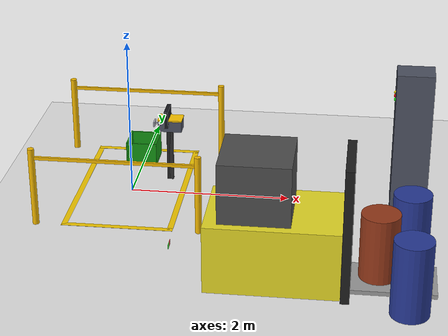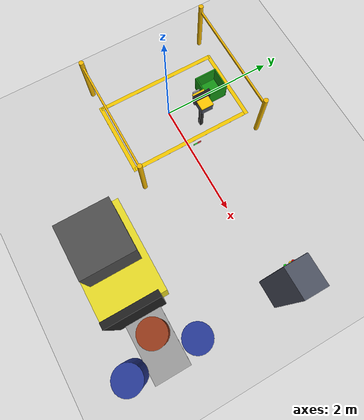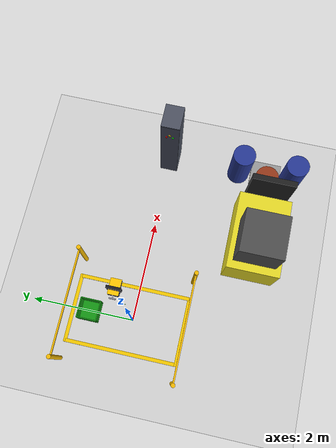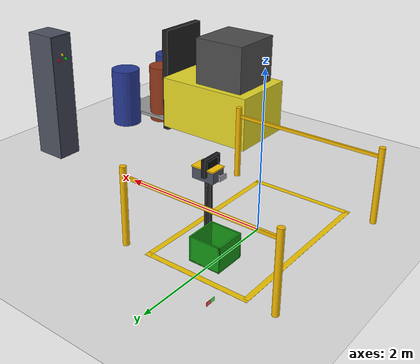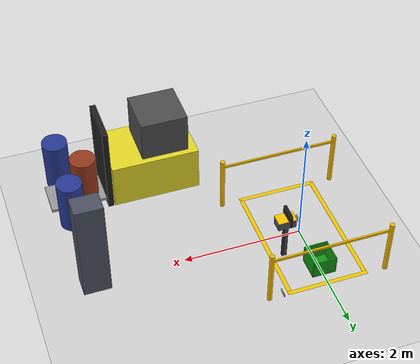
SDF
<sdf version="1.6">
 <world name="weld_inspection_world">
  <include><uri>model://ground_plane</uri></include>
  <model name="camera_model">
   <static>true</static>
   <pose>0 0 0.95 0 1.5708 0</pose>
   <link name="camera_link">
    <sensor name="weld_camera" type="camera">
     <always_on>1</always_on>
     <update_rate>10</update_rate>
     <camera>
      <horizontal_fov>0.80</horizontal_fov>
      <image><width>640</width><height>480</height></image>
      <clip><near>0.01</near><far>3.0</far></clip>
     </camera>
     <plugin name="camera_controller" filename="libgazebo_ros_camera.so">
      <alwaysOn>true</alwaysOn>
      <cameraName>weld_camera</cameraName>
      <frameName>camera_link</frameName>
     </plugin>
    </sensor>
   </link>
  </model>
  <model name="status_stand">
   <static>true</static>
   <link name="pole">
    <pose>0.42 0.40 0.4 0 0 0</pose>
    <visual name="v">
     <geometry><box><size>0.05 0.05 0.8</size></box></geometry>
     <material><ambient>0.1 0.1 0.1 1</ambient><diffuse>0.14 0.14 0.14 1</diffuse></material>
    </visual>
   </link>
   <link name="hmi_body">
    <pose>0.41 0.40 0.88 0 0 0</pose>
    <visual name="v">
     <geometry><box><size>0.05 0.28 0.22</size></box></geometry>
     <material><ambient>0.08 0.08 0.1 1</ambient><diffuse>0.1 0.1 0.12 1</diffuse></material>
    </visual>
   </link>
   <link name="hmi_screen">
    <pose>0.385 0.40 0.88 0 0 0</pose>
    <visual name="v">
     <geometry><box><size>0.005 0.20 0.16</size></box></geometry>
     <material><ambient>0.04 0.04 0.05 1</ambient><diffuse>0.05 0.05 0.06 1</diffuse></material>
    </visual>
   </link>
  </model>
  <model name="movable_indicator_green">
   <static>false</static>
   <pose>0.385 0.36 -1.0 0 0 0</pose>
   <link name="link">
    <kinematic>true</kinematic>
    <visual name="v">
     <geometry><box><size>0.008 0.08 0.06</size></box></geometry>
     <material>
      <ambient>0.0 0.85 0.0 1</ambient>
      <diffuse>0.0 1.0 0.0 1</diffuse>
      <emissive>0.0 0.55 0.0 1</emissive>
     </material>
    </visual>
   </link>
  </model>
  <model name="movable_indicator_red">
   <static>false</static>
   <pose>0.385 0.44 -1.0 0 0 0</pose>
   <link name="link">
    <kinematic>true</kinematic>
    <visual name="v">
     <geometry><box><size>0.008 0.08 0.06</size></box></geometry>
     <material>
      <ambient>0.85 0.0 0.0 1</ambient>
      <diffuse>1.0 0.0 0.0 1</diffuse>
      <emissive>0.55 0.0 0.0 1</emissive>
     </material>
    </visual>
   </link>
  </model>
  <model name="pusher_housing">
   <static>true</static>
   <pose>0.45 0.4 0.78 0 0 0</pose>
   <link name="housing">
    <visual name="v">
     <geometry><box><size>0.3 0.2 0.15</size></box></geometry>
     <material><ambient>0.25 0.28 0.32 1</ambient><diffuse>0.3 0.32 0.38 1</diffuse></material>
    </visual>
    <collision name="c"><geometry><box><size>0.3 0.2 0.15</size></box></geometry></collision>
   </link>
   <link name="leg">
    <pose>0 0 -0.39 0 0 0</pose>
    <visual name="v">
     <geometry><box><size>0.05 0.05 0.78</size></box></geometry>
     <material><ambient>0.15 0.15 0.15 1</ambient><diffuse>0.18 0.18 0.18 1</diffuse></material>
    </visual>
   </link>
   <link name="stripe">
    <pose>0 0 0.075 0 0 0</pose>
    <visual name="v">
     <geometry><box><size>0.31 0.21 0.018</size></box></geometry>
     <material><ambient>0.85 0.65 0.0 1</ambient><diffuse>1.0 0.78 0.0 1</diffuse></material>
    </visual>
   </link>
  </model>
  <model name="pusher_ram">
   <static>false</static>
   <pose>0.25 0.4 0.78 0 0 0</pose>
   <link name="link">
    <kinematic>true</kinematic>
    <visual name="rod">
     <pose>0.05 0 0 0 0 0</pose>
     <geometry><box><size>0.1 0.02 0.02</size></box></geometry>
     <material><ambient>0.58 0.58 0.62 1</ambient><diffuse>0.7 0.7 0.75 1</diffuse></material>
    </visual>
    <visual name="plate">
     <pose>-0.01 0 0 0 0 0</pose>
     <geometry><box><size>0.02 0.12 0.06</size></box></geometry>
     <material><ambient>0.55 0.55 0.58 1</ambient><diffuse>0.65 0.65 0.7 1</diffuse></material>
    </visual>
    <collision name="c">
     <pose>-0.01 0 0 0 0 0</pose>
     <geometry><box><size>0.02 0.12 0.06</size></box></geometry>
    </collision>
   </link>
  </model>
  <model name="good_bin">
   <static>true</static>
   <pose>0.0 0.85 0.05 0 0 0</pose>
   <link name="link">
    <collision name="bottom"><geometry><box><size>0.4 0.4 0.02</size></box></geometry></collision>
    <visual name="bottom">
     <geometry><box><size>0.4 0.4 0.02</size></box></geometry>
     <material><ambient>0.07 0.48 0.07 1</ambient><diffuse>0.08 0.58 0.08 1</diffuse></material>
    </visual>
    <collision name="w1">
     <pose>0.19 0 0.15 0 0 0</pose>
     <geometry><box><size>0.02 0.4 0.3</size></box></geometry>
    </collision>
    <visual name="w1">
     <pose>0.19 0 0.15 0 0 0</pose>
     <geometry><box><size>0.02 0.4 0.3</size></box></geometry>
     <material><ambient>0.07 0.48 0.07 1</ambient><diffuse>0.08 0.58 0.08 1</diffuse></material>
    </visual>
    <collision name="w2">
     <pose>-0.19 0 0.15 0 0 0</pose>
     <geometry><box><size>0.02 0.4 0.3</size></box></geometry>
    </collision>
    <visual name="w2">
     <pose>-0.19 0 0.15 0 0 0</pose>
     <geometry><box><size>0.02 0.4 0.3</size></box></geometry>
     <material><ambient>0.07 0.48 0.07 1</ambient><diffuse>0.08 0.58 0.08 1</diffuse></material>
    </visual>
    <collision name="w3">
     <pose>0 0.19 0.15 0 0 0</pose>
     <geometry><box><size>0.4 0.02 0.3</size></box></geometry>
    </collision>
    <visual name="w3">
     <pose>0 0.19 0.15 0 0 0</pose>
     <geometry><box><size>0.4 0.02 0.3</size></box></geometry>
     <material><ambient>0.07 0.48 0.07 1</ambient><diffuse>0.08 0.58 0.08 1</diffuse></material>
    </visual>
    <collision name="w4">
     <pose>0 -0.19 0.15 0 0 0</pose>
     <geometry><box><size>0.4 0.02 0.3</size></box></geometry>
    </collision>
    <visual name="w4">
     <pose>0 -0.19 0.15 0 0 0</pose>
     <geometry><box><size>0.4 0.02 0.3</size></box></geometry>
     <material><ambient>0.07 0.48 0.07 1</ambient><diffuse>0.08 0.58 0.08 1</diffuse></material>
    </visual>
   </link>
  </model>
  <model name="floor_markings">
   <static>true</static>
   <link name="strip_l">
    <pose>-0.65 0.1 0.012 0 0 0</pose>
    <visual name="v">
     <geometry><box><size>0.07 2.2 0.002</size></box></geometry>
     <material><ambient>0.78 0.62 0.0 1</ambient><diffuse>0.95 0.78 0.0 1</diffuse></material>
    </visual>
   </link>
   <link name="strip_r">
    <pose>0.65 0.1 0.012 0 0 0</pose>
    <visual name="v">
     <geometry><box><size>0.07 2.2 0.002</size></box></geometry>
     <material><ambient>0.78 0.62 0.0 1</ambient><diffuse>0.95 0.78 0.0 1</diffuse></material>
    </visual>
   </link>
   <link name="strip_back">
    <pose>0 -1.0 0.012 0 0 0</pose>
    <visual name="v">
     <geometry><box><size>1.37 0.07 0.002</size></box></geometry>
     <material><ambient>0.78 0.62 0.0 1</ambient><diffuse>0.95 0.78 0.0 1</diffuse></material>
    </visual>
   </link>
   <link name="strip_front">
    <pose>0 1.2 0.012 0 0 0</pose>
    <visual name="v">
     <geometry><box><size>1.37 0.07 0.002</size></box></geometry>
     <material><ambient>0.78 0.62 0.0 1</ambient><diffuse>0.95 0.78 0.0 1</diffuse></material>
    </visual>
   </link>
  </model>
  <model name="safety_bollards">
   <static>true</static>
   <link name="b_bl">
    <pose>-1.0 -1.0 0.5 0 0 0</pose>
    <visual name="v">
     <geometry><cylinder><radius>0.04</radius><length>1.0</length></cylinder></geometry>
     <material><ambient>0.78 0.58 0.0 1</ambient><diffuse>0.95 0.72 0.0 1</diffuse></material>
    </visual>
   </link>
   <link name="b_br">
    <pose>1.0 -1.0 0.5 0 0 0</pose>
    <visual name="v">
     <geometry><cylinder><radius>0.04</radius><length>1.0</length></cylinder></geometry>
     <material><ambient>0.78 0.58 0.0 1</ambient><diffuse>0.95 0.72 0.0 1</diffuse></material>
    </visual>
   </link>
   <link name="b_fl">
    <pose>-1.0 1.2 0.5 0 0 0</pose>
    <visual name="v">
     <geometry><cylinder><radius>0.04</radius><length>1.0</length></cylinder></geometry>
     <material><ambient>0.78 0.58 0.0 1</ambient><diffuse>0.95 0.72 0.0 1</diffuse></material>
    </visual>
   </link>
   <link name="b_fr">
    <pose>1.0 1.2 0.5 0 0 0</pose>
    <visual name="v">
     <geometry><cylinder><radius>0.04</radius><length>1.0</length></cylinder></geometry>
     <material><ambient>0.78 0.58 0.0 1</ambient><diffuse>0.95 0.72 0.0 1</diffuse></material>
    </visual>
   </link>
   <link name="rail_back">
    <pose>0 -1.0 0.88 0 0 0</pose>
    <visual name="v">
     <geometry><box><size>2.0 0.03 0.04</size></box></geometry>
     <material><ambient>0.78 0.58 0.0 1</ambient><diffuse>0.95 0.72 0.0 1</diffuse></material>
    </visual>
   </link>
   <link name="rail_front">
    <pose>0 1.2 0.88 0 0 0</pose>
    <visual name="v">
     <geometry><box><size>2.0 0.03 0.04</size></box></geometry>
     <material><ambient>0.78 0.58 0.0 1</ambient><diffuse>0.95 0.72 0.0 1</diffuse></material>
    </visual>
   </link>
  </model>
  <model name="storage_drums">
   <static>true</static>
   <link name="d1">
    <pose>3.5 -2.5 0.45 0 0 0</pose>
    <visual name="v">
     <geometry><cylinder><radius>0.22</radius><length>0.9</length></cylinder></geometry>
     <material><ambient>0.12 0.18 0.48 1</ambient><diffuse>0.15 0.22 0.58 1</diffuse></material>
    </visual>
    <collision name="c">
     <geometry><cylinder><radius>0.22</radius><length>0.9</length></cylinder></geometry>
    </collision>
   </link>
   <link name="d2">
    <pose>3.15 -1.95 0.45 0 0 0</pose>
    <visual name="v">
     <geometry><cylinder><radius>0.22</radius><length>0.9</length></cylinder></geometry>
     <material><ambient>0.48 0.18 0.08 1</ambient><diffuse>0.58 0.22 0.1 1</diffuse></material>
    </visual>
    <collision name="c">
     <geometry><cylinder><radius>0.22</radius><length>0.9</length></cylinder></geometry>
    </collision>
   </link>
   <link name="d3">
    <pose>3.5 -1.45 0.45 0 0 0</pose>
    <visual name="v">
     <geometry><cylinder><radius>0.22</radius><length>0.9</length></cylinder></geometry>
     <material><ambient>0.12 0.18 0.48 1</ambient><diffuse>0.15 0.22 0.58 1</diffuse></material>
    </visual>
    <collision name="c">
     <geometry><cylinder><radius>0.22</radius><length>0.9</length></cylinder></geometry>
    </collision>
   </link>
  </model>
  <model name="electrical_cabinet">
   <static>true</static>
   <pose>3.5 0.0 0.9 0 0 0</pose>
   <link name="link">
    <visual name="body">
     <geometry><box><size>0.45 0.35 1.8</size></box></geometry>
     <material><ambient>0.25 0.28 0.32 1</ambient><diffuse>0.3 0.32 0.38 1</diffuse></material>
    </visual>
    <collision name="c"><geometry><box><size>0.45 0.35 1.8</size></box></geometry></collision>
    <visual name="door_panel">
     <pose>-0.228 0 0 0 0 0</pose>
     <geometry><box><size>0.005 0.34 1.78</size></box></geometry>
     <material><ambient>0.2 0.22 0.27 1</ambient><diffuse>0.24 0.26 0.32 1</diffuse></material>
    </visual>
    <visual name="led_g">
     <pose>-0.228 -0.06 0.55 0 0 0</pose>
     <geometry><sphere><radius>0.022</radius></sphere></geometry>
     <material>
      <ambient>0.0 0.75 0.0 1</ambient>
      <diffuse>0.0 0.9 0.0 1</diffuse>
      <emissive>0.0 0.5 0.0 1</emissive>
     </material>
    </visual>
    <visual name="led_r">
     <pose>-0.228 0.06 0.55 0 0 0</pose>
     <geometry><sphere><radius>0.022</radius></sphere></geometry>
     <material>
      <ambient>0.75 0.0 0.0 1</ambient>
      <diffuse>0.9 0.0 0.0 1</diffuse>
      <emissive>0.5 0.0 0.0 1</emissive>
     </material>
    </visual>
    <visual name="led_y">
     <pose>-0.228 0.0 0.62 0 0 0</pose>
     <geometry><sphere><radius>0.022</radius></sphere></geometry>
     <material>
      <ambient>0.75 0.65 0.0 1</ambient>
      <diffuse>0.9 0.78 0.0 1</diffuse>
      <emissive>0.5 0.4 0.0 1</emissive>
     </material>
    </visual>
   </link>
  </model>
  <model name="forklift">
   <static>true</static>
   <pose>2.0 -2.0 0 0 0 0</pose>
   <link name="base_link">
    <visual name="body_visual">
     <pose>0 0 0.5 0 0 0</pose>
     <geometry><box><size>1.5 1.0 0.8</size></box></geometry>
     <material>
      <script><uri>file://media/materials/scripts/gazebo.material</uri><name>Gazebo/Yellow</name></script>
     </material>
    </visual>
    <visual name="cabin_visual">
     <pose>-0.2 0 1.2 0 0 0</pose>
     <geometry><box><size>0.8 0.8 0.8</size></box></geometry>
     <material>
      <script><uri>file://media/materials/scripts/gazebo.material</uri><name>Gazebo/DarkGrey</name></script>
     </material>
    </visual>
    <visual name="mast_visual">
     <pose>0.8 0 0.8 0 0 0</pose>
     <geometry><box><size>0.1 0.8 1.6</size></box></geometry>
     <material>
      <script><uri>file://media/materials/scripts/gazebo.material</uri><name>Gazebo/Black</name></script>
     </material>
    </visual>
    <visual name="forks_visual">
     <pose>1.3 0 0.1 0 0 0</pose>
     <geometry><box><size>1.0 0.6 0.05</size></box></geometry>
     <material>
      <script><uri>file://media/materials/scripts/gazebo.material</uri><name>Gazebo/Grey</name></script>
     </material>
    </visual>
   </link>
  </model>
 </world>
</sdf>
